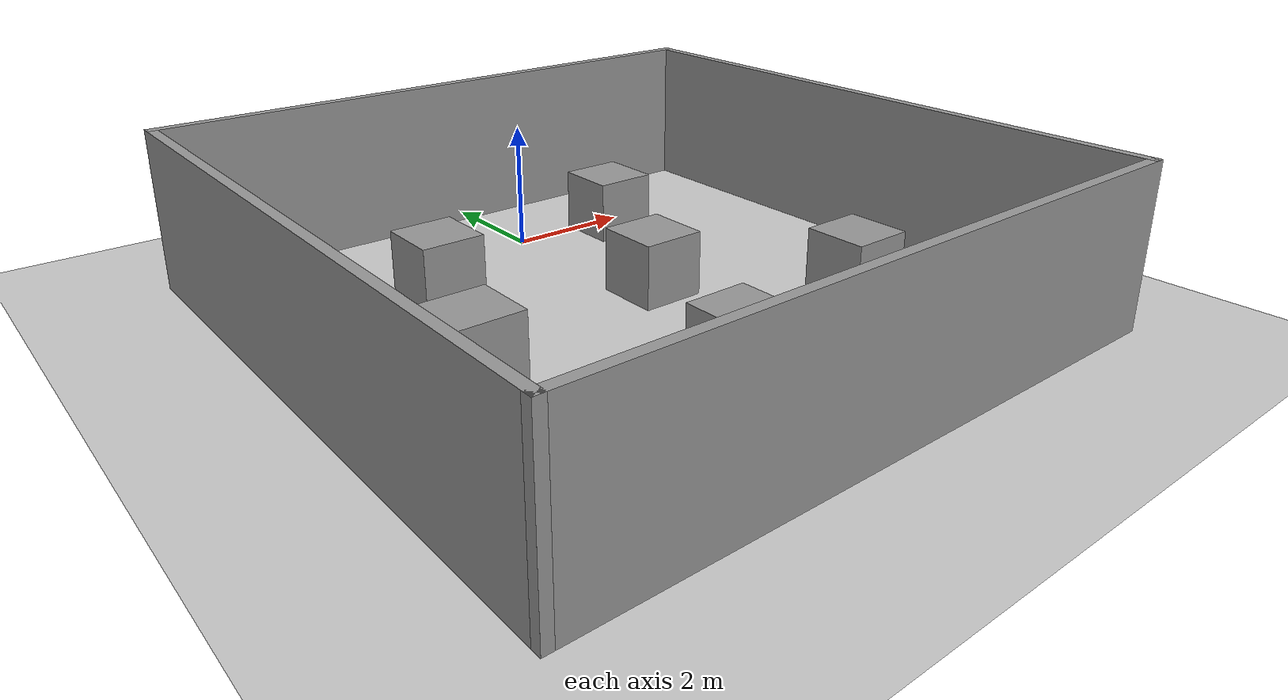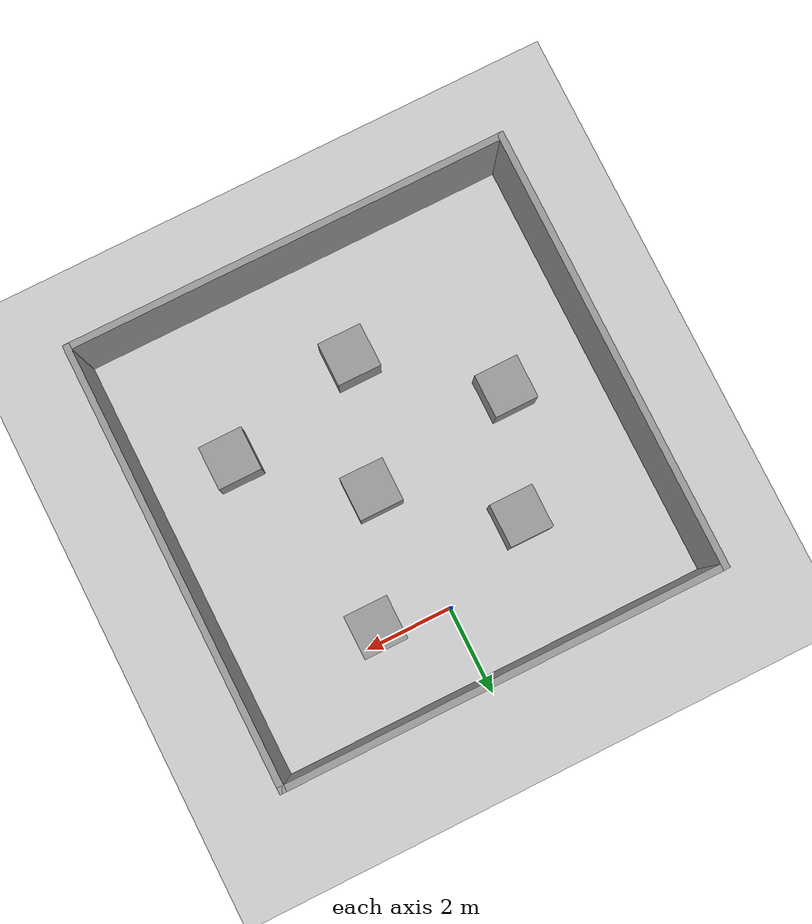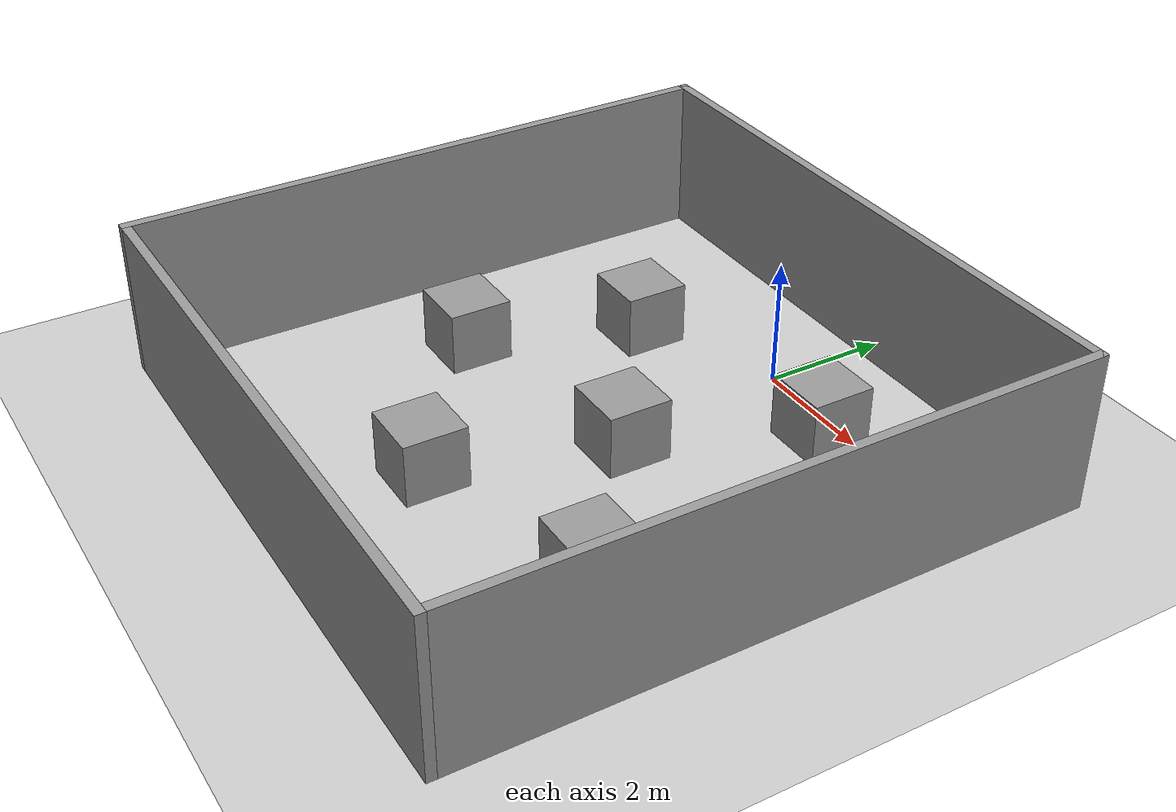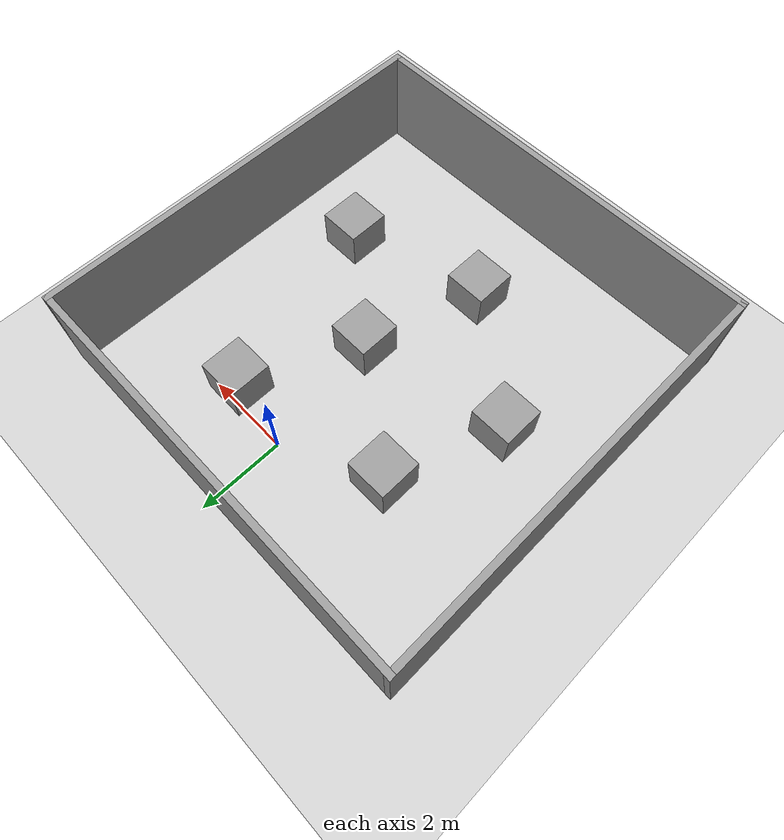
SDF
<sdf version="1.6">
 <world name="default">
  <light name="sun" type="directional">
   <pose>0 0 10 0 -0 0</pose>
   <diffuse>0.8 0.8 0.8 1</diffuse>
   <specular>0.2 0.2 0.2 1</specular>
   <attenuation>
    <range>1000</range>
    <constant>0.9</constant>
    <linear>0.01</linear>
    <quadratic>0.001</quadratic>
   </attenuation>
   <direction>-0.5 0.1 -0.9</direction>
  </light>
  <model name="ground_plane">
   <static>1</static>
   <link name="link">
    <collision name="collision">
     <geometry><plane><normal>0 0 1</normal><size>100 100</size></plane></geometry>
     <surface>
      <contact><collide_bitmask>65535</collide_bitmask></contact>
      <friction><ode><mu>100</mu><mu2>50</mu2></ode></friction>
     </surface>
    </collision>
    <visual name="visual">
     <cast_shadows>0</cast_shadows>
     <geometry><plane><normal>0 0 1</normal><size>100 100</size></plane></geometry>
     <material>
      <script><uri>file://media/materials/scripts/gazebo.material</uri><name>Gazebo/Grey</name></script>
     </material>
    </visual>
   </link>
  </model>
  <gravity>0 0 -9.8</gravity>
  <magnetic_field>6e-06 2.3e-05 -4.2e-05</magnetic_field>
  <atmosphere type="adiabatic"/>
  <physics name="default_physics" default="0" type="ode">
   <max_step_size>0.001</max_step_size>
   <real_time_factor>1</real_time_factor>
   <real_time_update_rate>1000</real_time_update_rate>
  </physics>
  <scene><ambient>0.4 0.4 0.4 1</ambient><background>0.7 0.7 0.7 1</background><shadows>1</shadows></scene>
  <audio><device>default</device></audio>
  <spherical_coordinates>
   <surface_model>EARTH_WGS84</surface_model>
   <latitude_deg>0</latitude_deg>
   <longitude_deg>0</longitude_deg>
   <elevation>0</elevation>
   <heading_deg>0</heading_deg>
  </spherical_coordinates>
  <model name="world">
   <pose>-0.267109 -3.23228 0 0 -0 0</pose>
   <link name="Wall_2">
    <collision name="Wall_2_Collision">
     <geometry><box><size>10 0.15 2.5</size></box></geometry>
     <pose>0 0 1.25 0 -0 0</pose>
    </collision>
    <visual name="Wall_2_Visual">
     <pose>0 0 1.25 0 -0 0</pose>
     <geometry><box><size>10 0.15 2.5</size></box></geometry>
     <material>
      <script><uri>file://media/materials/scripts/gazebo.material</uri><name>Gazebo/Grey</name></script>
      <ambient>1 1 1 1</ambient>
     </material>
     <meta><layer>0</layer></meta>
    </visual>
    <pose>-0 4.925 0 0 -0 0</pose>
   </link>
   <link name="Wall_3">
    <collision name="Wall_3_Collision">
     <geometry><box><size>10 0.15 2.5</size></box></geometry>
     <pose>0 0 1.25 0 -0 0</pose>
    </collision>
    <visual name="Wall_3_Visual">
     <pose>0 0 1.25 0 -0 0</pose>
     <geometry><box><size>10 0.15 2.5</size></box></geometry>
     <material>
      <script><uri>file://media/materials/scripts/gazebo.material</uri><name>Gazebo/Grey</name></script>
      <ambient>1 1 1 1</ambient>
     </material>
     <meta><layer>0</layer></meta>
    </visual>
    <pose>4.925 0 0 0 -0 -1.5708</pose>
   </link>
   <link name="Wall_4">
    <collision name="Wall_4_Collision">
     <geometry><box><size>10 0.15 2.5</size></box></geometry>
     <pose>0 0 1.25 0 -0 0</pose>
    </collision>
    <visual name="Wall_4_Visual">
     <pose>0 0 1.25 0 -0 0</pose>
     <geometry><box><size>10 0.15 2.5</size></box></geometry>
     <material>
      <script><uri>file://media/materials/scripts/gazebo.material</uri><name>Gazebo/Grey</name></script>
      <ambient>1 1 1 1</ambient>
     </material>
     <meta><layer>0</layer></meta>
    </visual>
    <pose>-0 -4.925 0 0 -0 3.14159</pose>
   </link>
   <link name="Wall_5">
    <collision name="Wall_5_Collision">
     <geometry><box><size>10 0.15 2.5</size></box></geometry>
     <pose>0 0 1.25 0 -0 0</pose>
    </collision>
    <visual name="Wall_5_Visual">
     <pose>0 0 1.25 0 -0 0</pose>
     <geometry><box><size>10 0.15 2.5</size></box></geometry>
     <material>
      <script><uri>file://media/materials/scripts/gazebo.material</uri><name>Gazebo/Grey</name></script>
      <ambient>1 1 1 1</ambient>
     </material>
     <meta><layer>0</layer></meta>
    </visual>
    <pose>-4.925 0 0 0 -0 1.5708</pose>
   </link>
   <static>1</static>
  </model>
  <model name="unit_box">
   <pose>-0.462068 -5.7279 0.499995 -1e-05 -0 -0</pose>
   <link name="link">
    <inertial>
     <mass>1</mass>
     <inertia>
      <ixx>0.166667</ixx>
      <ixy>0</ixy>
      <ixz>0</ixz>
      <iyy>0.166667</iyy>
      <iyz>0</iyz>
      <izz>0.166667</izz>
     </inertia>
    </inertial>
    <collision name="collision"><geometry><box><size>1 1 1</size></box></geometry></collision>
    <visual name="visual">
     <geometry><box><size>1 1 1</size></box></geometry>
     <material>
      <script><name>Gazebo/Grey</name><uri>file://media/materials/scripts/gazebo.material</uri></script>
     </material>
    </visual>
   </link>
   <plugin name="push_animate" filename="libbox_animator.so">
    <time_interval>15.0</time_interval>
    <num_positions>4</num_positions>
    <positions>-0.46 -6 0 4.5 -6 0 -0.46 -6 0 -4.5 -6 0 -0.46 -6 0</positions>
   </plugin>
  </model>
  <model name="unit_box_0">
   <pose>-3.12291 -3.64419 0.499995 0 1e-05 0</pose>
   <link name="link">
    <inertial>
     <mass>1</mass>
     <inertia>
      <ixx>0.166667</ixx>
      <ixy>0</ixy>
      <ixz>0</ixz>
      <iyy>0.166667</iyy>
      <iyz>0</iyz>
      <izz>0.166667</izz>
     </inertia>
    </inertial>
    <collision name="collision"><geometry><box><size>1 1 1</size></box></geometry></collision>
    <visual name="visual">
     <geometry><box><size>1 1 1</size></box></geometry>
     <material>
      <script><name>Gazebo/Grey</name><uri>file://media/materials/scripts/gazebo.material</uri></script>
     </material>
    </visual>
   </link>
   <plugin name="push_animate" filename="libbox_animator.so">
    <time_interval>15.0</time_interval>
    <num_positions>4</num_positions>
    <positions>-3.12 -3.64419 0 -4.5 -3.64419 0 -3.12 -3.64419 0 4.5 -3.64419 0 -3.12 -3.64419 0</positions>
   </plugin>
  </model>
  <model name="unit_box_1">
   <pose>0.395807 -2.96511 0.499995 -1e-05 -0 -0</pose>
   <link name="link">
    <inertial>
     <mass>1</mass>
     <inertia>
      <ixx>0.166667</ixx>
      <ixy>0</ixy>
      <ixz>0</ixz>
      <iyy>0.166667</iyy>
      <iyz>0</iyz>
      <izz>0.166667</izz>
     </inertia>
    </inertial>
    <collision name="collision"><geometry><box><size>1 1 1</size></box></geometry></collision>
    <visual name="visual">
     <geometry><box><size>1 1 1</size></box></geometry>
     <material>
      <script><name>Gazebo/Grey</name><uri>file://media/materials/scripts/gazebo.material</uri></script>
     </material>
    </visual>
   </link>
   <plugin name="push_animate" filename="libbox_animator.so">
    <time_interval>15.0</time_interval>
    <num_positions>4</num_positions>
    <positions>0.39 -2.06512 0 4.5 -2.06512 0 0.39 -2.06512 0 -4.5 -2.06512 0 0.39 -2.06512 0</positions>
   </plugin>
  </model>
  <model name="unit_box_2">
   <pose>-2.16623 -1.06066 0.499995 0 1e-05 0</pose>
   <link name="link">
    <inertial>
     <mass>1</mass>
     <inertia>
      <ixx>0.166667</ixx>
      <ixy>0</ixy>
      <ixz>0</ixz>
      <iyy>0.166667</iyy>
      <iyz>0</iyz>
      <izz>0.166667</izz>
     </inertia>
    </inertial>
    <collision name="collision"><geometry><box><size>1 1 1</size></box></geometry></collision>
    <visual name="visual">
     <geometry><box><size>1 1 1</size></box></geometry>
     <material>
      <script><name>Gazebo/Grey</name><uri>file://media/materials/scripts/gazebo.material</uri></script>
     </material>
    </visual>
   </link>
   <plugin name="push_animate" filename="libbox_animator.so">
    <time_interval>15.0</time_interval>
    <num_positions>4</num_positions>
    <positions>-2.16 -1.06066 0 -4.5 -1.06066 0 -2.16 -1.06066 0 4.5 -1.06066 0 -2.16 -1.06066 0</positions>
   </plugin>
  </model>
  <model name="unit_box_3">
   <pose>2.75847 -4.87303 0.499995 -1e-05 -0 0</pose>
   <link name="link">
    <inertial>
     <mass>1</mass>
     <inertia>
      <ixx>0.166667</ixx>
      <ixy>0</ixy>
      <ixz>0</ixz>
      <iyy>0.166667</iyy>
      <iyz>0</iyz>
      <izz>0.166667</izz>
     </inertia>
    </inertial>
    <collision name="collision"><geometry><box><size>1 1 1</size></box></geometry></collision>
    <visual name="visual">
     <geometry><box><size>1 1 1</size></box></geometry>
     <material>
      <script><name>Gazebo/Grey</name><uri>file://media/materials/scripts/gazebo.material</uri></script>
     </material>
    </visual>
   </link>
   <plugin name="push_animate" filename="libbox_animator.so">
    <time_interval>15.0</time_interval>
    <num_positions>4</num_positions>
    <positions>2.75 -4.87304 0 4.5 -4.87304 0 2.75 -4.87304 0 -4.5 -4.87304 0 2.75 -4.87304 0</positions>
   </plugin>
  </model>
  <model name="unit_box_4">
   <pose>1.59738 -0.3403 0.5 0 -0 0</pose>
   <link name="link">
    <inertial>
     <mass>1</mass>
     <inertia>
      <ixx>0.166667</ixx>
      <ixy>0</ixy>
      <ixz>0</ixz>
      <iyy>0.166667</iyy>
      <iyz>0</iyz>
      <izz>0.166667</izz>
     </inertia>
    </inertial>
    <collision name="collision"><geometry><box><size>1 1 1</size></box></geometry></collision>
    <visual name="visual">
     <geometry><box><size>1 1 1</size></box></geometry>
     <material>
      <script><name>Gazebo/Grey</name><uri>file://media/materials/scripts/gazebo.material</uri></script>
     </material>
    </visual>
   </link>
   <plugin name="push_animate" filename="libbox_animator.so">
    <time_interval>15.0</time_interval>
    <num_positions>4</num_positions>
    <positions>1.59 0.9403 0 -4.5 0.9403 0 1.59 0.9403 0 4.5 0.9403 0 1.59 0.9403 0</positions>
   </plugin>
  </model>
 </world>
</sdf>
